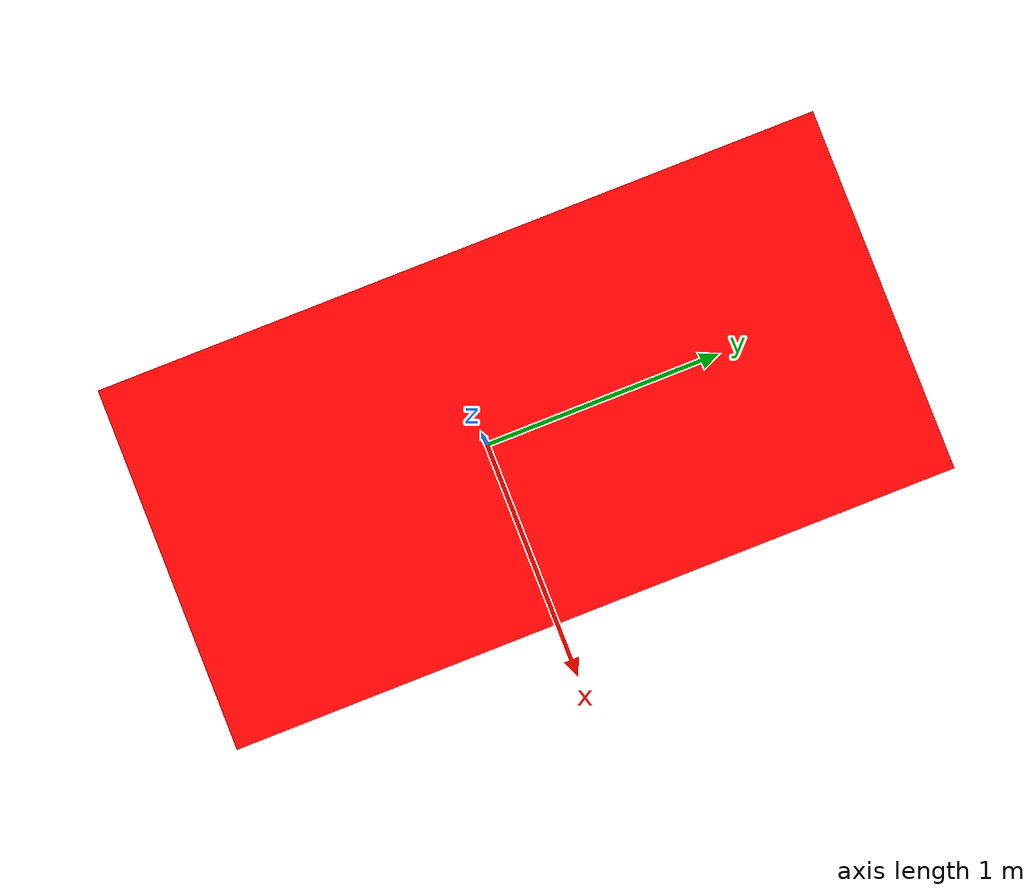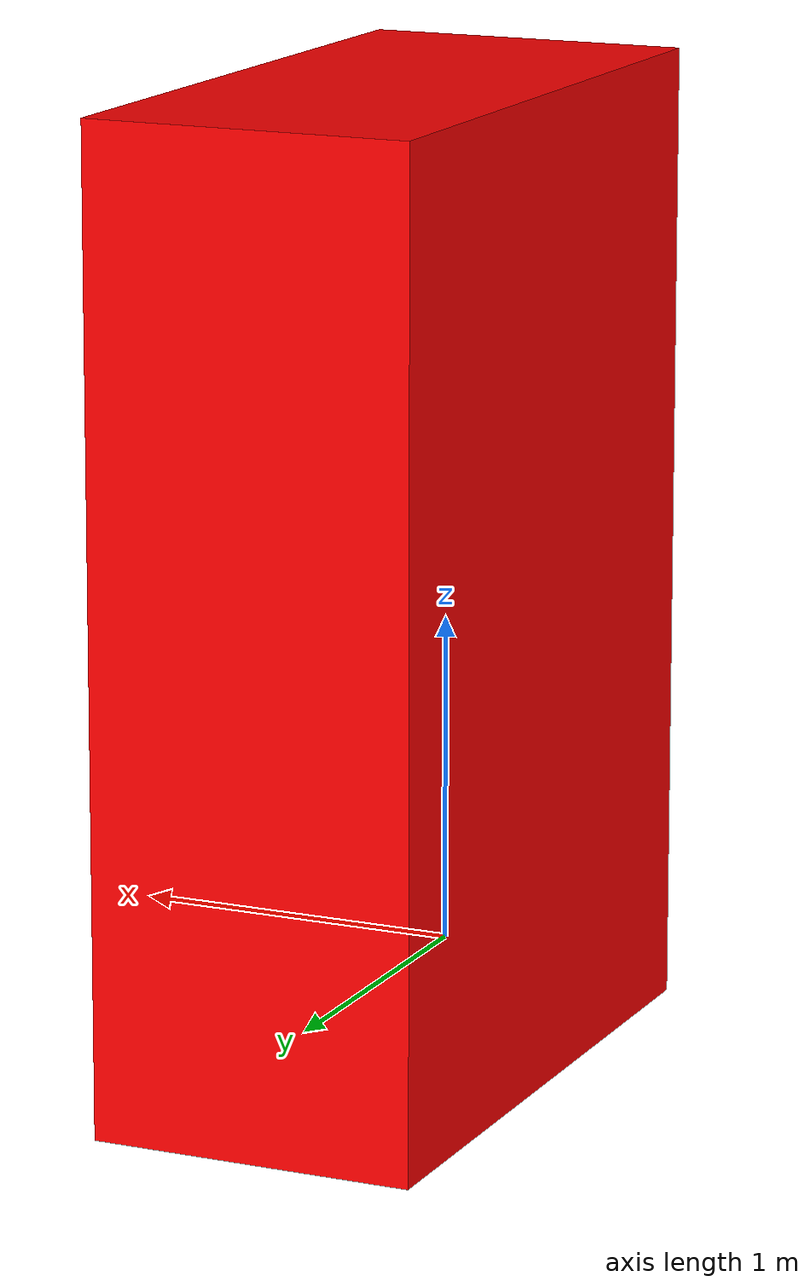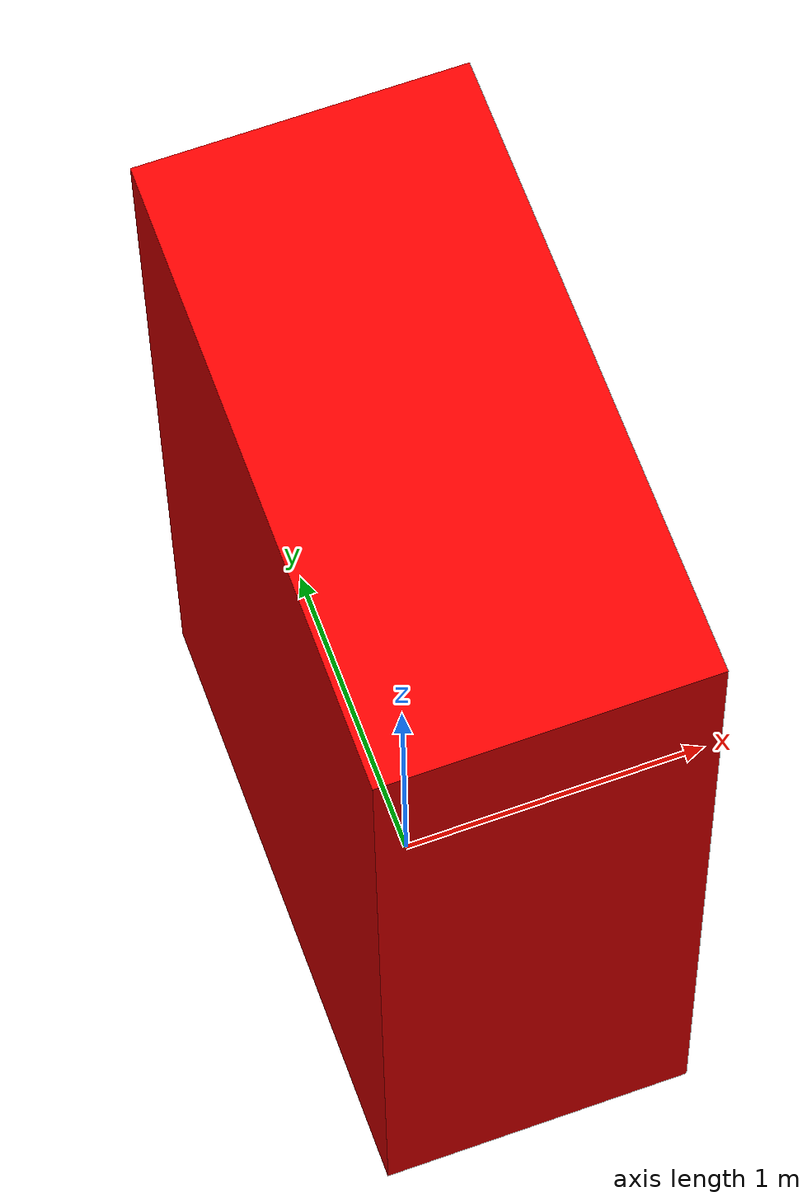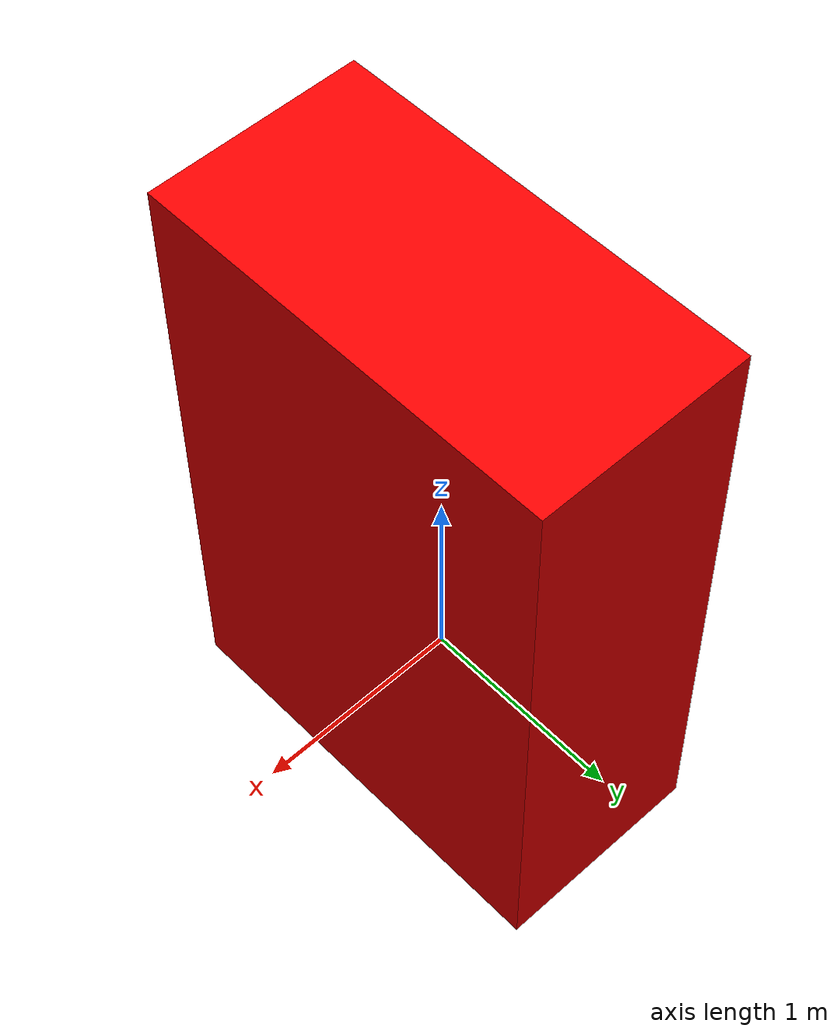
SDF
<?xml version="1.0" ?>
<sdf version="1.6">
  <world name="default">
    <gravity>0 0 0</gravity>
    <physics name="1ms" type="ode">
      <max_step_size>0.001</max_step_size>
      <real_time_factor>0</real_time_factor>
      <dart>
        <collision_detector>bullet</collision_detector>
      </dart>
    </physics>

    <gui fullscreen="0">

      <!-- 3D scene -->
      <plugin filename="MinimalScene" name="3D View">
        <gz-gui>
          <title>3D View</title>
          <property type="bool" key="showTitleBar">false</property>
          <property type="string" key="state">docked</property>
        </gz-gui>

        <engine>ogre</engine>
        <scene>scene</scene>
        <ambient_light>0.4 0.4 0.4</ambient_light>
        <background_color>0.8 0.8 0.8</background_color>
        <camera_pose>-6 0 6 0 0.5 0</camera_pose>
      </plugin>

    </gui>

    <light type="directional" name="sun">
      <cast_shadows>true</cast_shadows>
      <pose>0 0 10 0 0 0</pose>
      <diffuse>0.8 0.8 0.8 1</diffuse>
      <specular>0.2 0.2 0.2 1</specular>
      <attenuation>
        <range>1000</range>
        <constant>0.9</constant>
        <linear>0.01</linear>
        <quadratic>0.001</quadratic>
      </attenuation>
      <direction>-0.5 0.1 -0.9</direction>
    </light>

    <model name="box">
      <pose>0 0 1 0 0 0</pose>
      <link name="box_link">
        <inertial>
          <inertia>
            <ixx>1</ixx>
            <ixy>0</ixy>
            <ixz>0</ixz>
            <iyy>1</iyy>
            <iyz>0</iyz>
            <izz>1</izz>
          </inertia>
          <mass>1.0</mass>
        </inertial>
        <collision name="box_collision">
          <geometry>
            <box>
              <size>100 100 0.001</size>
            </box>
          </geometry>
        </collision>

        <visual name="box_visual">
          <laser_retro>1150</laser_retro>
          <pose>0.12 0.12 0.12 0 0 0</pose>
          <geometry>
            <box>
              <size>1 2 3</size>
            </box>
          </geometry>
          <material>
            <ambient>1 0 0 1</ambient>
            <diffuse>1 0 0 1</diffuse>
            <specular>1 0 0 1</specular>
          </material>
        </visual>
      </link>
    </model>

  </world>
</sdf>
